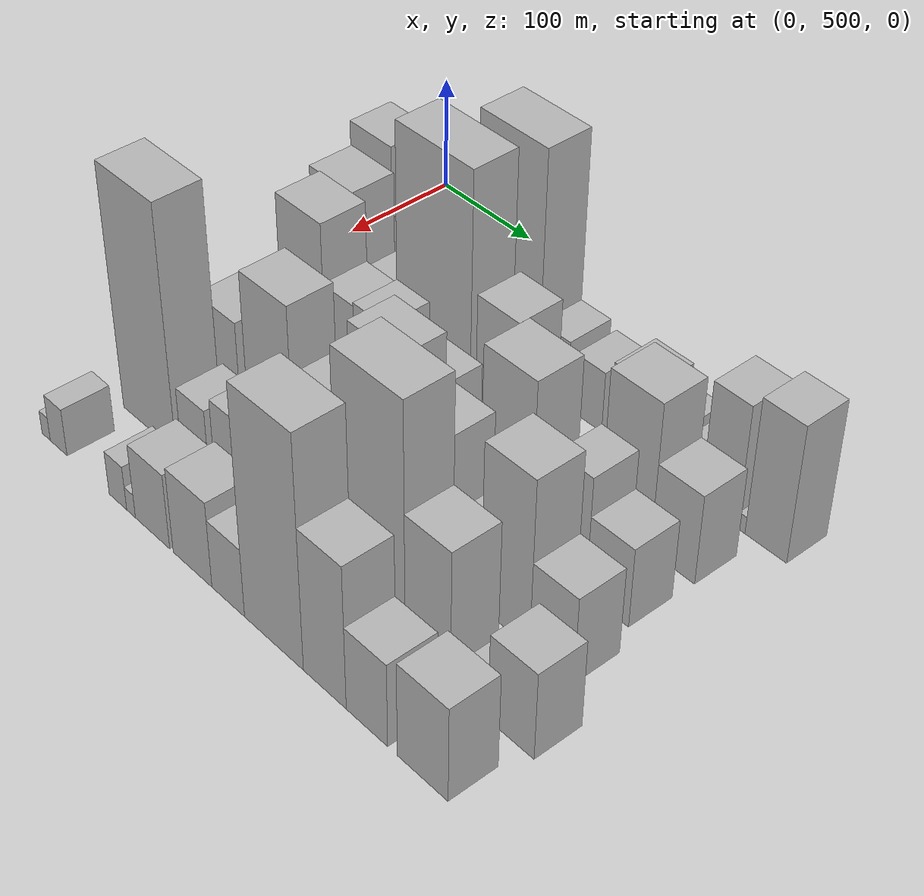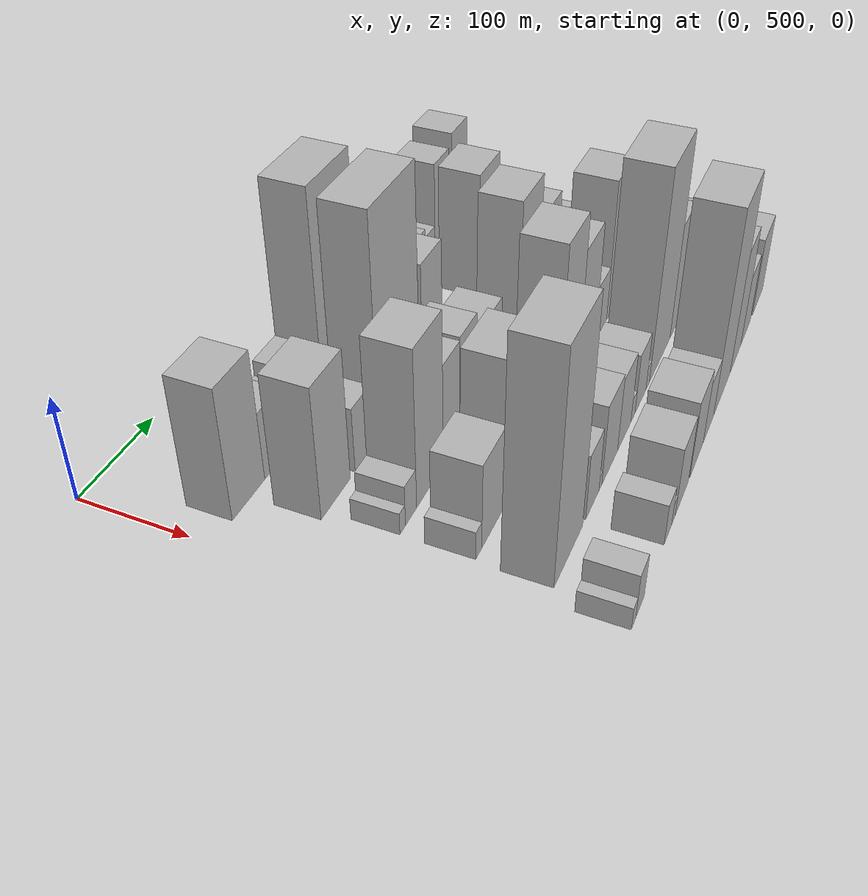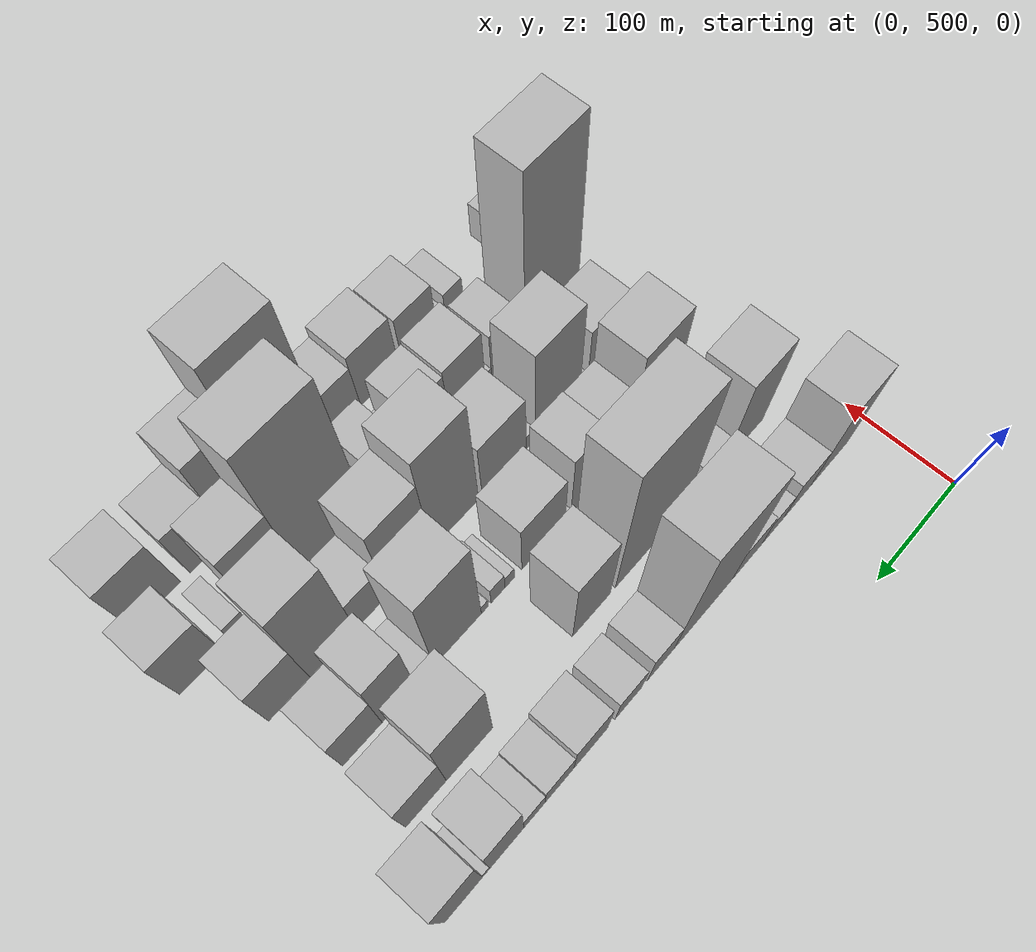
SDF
<sdf version="1.6">
 <world name="default">
  <model name="building_48">
   <static>1</static>
   <pose>100.0000 549.8775 0 0.000000 0.000000 0.000000</pose>
   <link name="link">
    <pose>0 0 63.00 0 0 0</pose>
    <collision name="collision"><geometry><box><size>40.0000 47.3200 126.0000</size></box></geometry></collision>
    <visual name="visual">
     <cast_shadows>0</cast_shadows>
     <geometry><box><size>40.0000 47.3200 126.0000</size></box></geometry>
     <material>
      <script>
       <uri>model://HANNAS_wall/materials/scripts</uri>
       <uri>model://HANNAS_wall/materials/textures</uri>
       <name>vrc/HANNAS_wall</name>
      </script>
     </material>
    </visual>
   </link>
  </model>
  <model name="building_49">
   <static>1</static>
   <pose>100.0000 590.4415 0 0.000000 0.000000 0.000000</pose>
   <link name="link">
    <pose>0 0 33.00 0 0 0</pose>
    <collision name="collision"><geometry><box><size>40.0000 33.8081 66.0000</size></box></geometry></collision>
    <visual name="visual">
     <cast_shadows>0</cast_shadows>
     <geometry><box><size>40.0000 33.8081 66.0000</size></box></geometry>
     <material>
      <script>
       <uri>model://HANNAS_wall/materials/scripts</uri>
       <uri>model://HANNAS_wall/materials/textures</uri>
       <name>vrc/HANNAS_wall</name>
      </script>
     </material>
    </visual>
   </link>
  </model>
  <model name="building_50">
   <static>1</static>
   <pose>100.0000 620.6591 0 0.000000 0.000000 0.000000</pose>
   <link name="link">
    <pose>0 0 22.50 0 0 0</pose>
    <collision name="collision"><geometry><box><size>40.0000 26.6270 45.0000</size></box></geometry></collision>
    <visual name="visual">
     <cast_shadows>0</cast_shadows>
     <geometry><box><size>40.0000 26.6270 45.0000</size></box></geometry>
     <material>
      <script>
       <uri>model://HANNAS_wall/materials/scripts</uri>
       <uri>model://HANNAS_wall/materials/textures</uri>
       <name>vrc/HANNAS_wall</name>
      </script>
     </material>
    </visual>
   </link>
  </model>
  <model name="building_51">
   <static>1</static>
   <pose>100.0000 651.8276 0 0.000000 0.000000 0.000000</pose>
   <link name="link">
    <pose>0 0 30.00 0 0 0</pose>
    <collision name="collision"><geometry><box><size>40.0000 35.7100 60.0000</size></box></geometry></collision>
    <visual name="visual">
     <cast_shadows>0</cast_shadows>
     <geometry><box><size>40.0000 35.7100 60.0000</size></box></geometry>
     <material>
      <script>
       <uri>model://HANNAS_wall/materials/scripts</uri>
       <uri>model://HANNAS_wall/materials/textures</uri>
       <name>vrc/HANNAS_wall</name>
      </script>
     </material>
    </visual>
   </link>
  </model>
  <model name="building_52">
   <static>1</static>
   <pose>100.0000 703.3484 0 0.000000 0.000000 0.000000</pose>
   <link name="link">
    <pose>0 0 103.50 0 0 0</pose>
    <collision name="collision"><geometry><box><size>40.0000 67.3316 207.0000</size></box></geometry></collision>
    <visual name="visual">
     <cast_shadows>0</cast_shadows>
     <geometry><box><size>40.0000 67.3316 207.0000</size></box></geometry>
     <material>
      <script>
       <uri>model://HANNAS_wall/materials/scripts</uri>
       <uri>model://HANNAS_wall/materials/textures</uri>
       <name>vrc/HANNAS_wall</name>
      </script>
     </material>
    </visual>
   </link>
  </model>
  <model name="building_53">
   <static>1</static>
   <pose>100.0000 752.0779 0 0.000000 0.000000 0.000000</pose>
   <link name="link">
    <pose>0 0 30.00 0 0 0</pose>
    <collision name="collision"><geometry><box><size>40.0000 30.1275 60.0000</size></box></geometry></collision>
    <visual name="visual">
     <cast_shadows>0</cast_shadows>
     <geometry><box><size>40.0000 30.1275 60.0000</size></box></geometry>
     <material>
      <script>
       <uri>model://HANNAS_wall/materials/scripts</uri>
       <uri>model://HANNAS_wall/materials/textures</uri>
       <name>vrc/HANNAS_wall</name>
      </script>
     </material>
    </visual>
   </link>
  </model>
  <model name="building_54">
   <static>1</static>
   <pose>100.0000 787.8107 0 0.000000 0.000000 0.000000</pose>
   <link name="link">
    <pose>0 0 27.00 0 0 0</pose>
    <collision name="collision"><geometry><box><size>40.0000 29.3382 54.0000</size></box></geometry></collision>
    <visual name="visual">
     <cast_shadows>0</cast_shadows>
     <geometry><box><size>40.0000 29.3382 54.0000</size></box></geometry>
     <material>
      <script>
       <uri>model://HANNAS_wall/materials/scripts</uri>
       <uri>model://HANNAS_wall/materials/textures</uri>
       <name>vrc/HANNAS_wall</name>
      </script>
     </material>
    </visual>
   </link>
  </model>
  <model name="building_55">
   <static>1</static>
   <pose>100.0000 828.6720 0 0.000000 0.000000 0.000000</pose>
   <link name="link">
    <pose>0 0 34.50 0 0 0</pose>
    <collision name="collision"><geometry><box><size>40.0000 36.3844 69.0000</size></box></geometry></collision>
    <visual name="visual">
     <cast_shadows>0</cast_shadows>
     <geometry><box><size>40.0000 36.3844 69.0000</size></box></geometry>
     <material>
      <script>
       <uri>model://HANNAS_wall/materials/scripts</uri>
       <uri>model://HANNAS_wall/materials/textures</uri>
       <name>vrc/HANNAS_wall</name>
      </script>
     </material>
    </visual>
   </link>
  </model>
  <model name="building_56">
   <static>1</static>
   <pose>100.0000 861.6268 0 0.000000 0.000000 0.000000</pose>
   <link name="link">
    <pose>0 0 25.50 0 0 0</pose>
    <collision name="collision"><geometry><box><size>40.0000 29.5252 51.0000</size></box></geometry></collision>
    <visual name="visual">
     <cast_shadows>0</cast_shadows>
     <geometry><box><size>40.0000 29.5252 51.0000</size></box></geometry>
     <material>
      <script>
       <uri>model://HANNAS_wall/materials/scripts</uri>
       <uri>model://HANNAS_wall/materials/textures</uri>
       <name>vrc/HANNAS_wall</name>
      </script>
     </material>
    </visual>
   </link>
  </model>
  <model name="building_57">
   <static>1</static>
   <pose>100.0000 887.3381 0 0.000000 0.000000 0.000000</pose>
   <link name="link">
    <pose>0 0 21.00 0 0 0</pose>
    <collision name="collision"><geometry><box><size>40.0000 21.8974 42.0000</size></box></geometry></collision>
    <visual name="visual">
     <cast_shadows>0</cast_shadows>
     <geometry><box><size>40.0000 21.8974 42.0000</size></box></geometry>
     <material>
      <script>
       <uri>model://HANNAS_wall/materials/scripts</uri>
       <uri>model://HANNAS_wall/materials/textures</uri>
       <name>vrc/HANNAS_wall</name>
      </script>
     </material>
    </visual>
   </link>
  </model>
  <model name="building_58">
   <static>1</static>
   <pose>100.0000 915.2594 0 0.000000 0.000000 0.000000</pose>
   <link name="link">
    <pose>0 0 54.00 0 0 0</pose>
    <collision name="collision"><geometry><box><size>40.0000 33.9451 108.0000</size></box></geometry></collision>
    <visual name="visual">
     <cast_shadows>0</cast_shadows>
     <geometry><box><size>40.0000 33.9451 108.0000</size></box></geometry>
     <material>
      <script>
       <uri>model://HANNAS_wall/materials/scripts</uri>
       <uri>model://HANNAS_wall/materials/textures</uri>
       <name>vrc/HANNAS_wall</name>
      </script>
     </material>
    </visual>
   </link>
  </model>
  <model name="building_59">
   <static>1</static>
   <pose>100.0000 935.6500 0 0.000000 0.000000 0.000000</pose>
   <link name="link">
    <pose>0 0 7.50 0 0 0</pose>
    <collision name="collision"><geometry><box><size>40.0000 6.8362 15.0000</size></box></geometry></collision>
    <visual name="visual">
     <cast_shadows>0</cast_shadows>
     <geometry><box><size>40.0000 6.8362 15.0000</size></box></geometry>
     <material>
      <script>
       <uri>model://HANNAS_wall/materials/scripts</uri>
       <uri>model://HANNAS_wall/materials/textures</uri>
       <name>vrc/HANNAS_wall</name>
      </script>
     </material>
    </visual>
   </link>
  </model>
  <model name="building_60">
   <static>1</static>
   <pose>100.0000 957.6113 0 0.000000 0.000000 0.000000</pose>
   <link name="link">
    <pose>0 0 60.00 0 0 0</pose>
    <collision name="collision"><geometry><box><size>40.0000 37.0865 120.0000</size></box></geometry></collision>
    <visual name="visual">
     <cast_shadows>0</cast_shadows>
     <geometry><box><size>40.0000 37.0865 120.0000</size></box></geometry>
     <material>
      <script>
       <uri>model://HANNAS_wall/materials/scripts</uri>
       <uri>model://HANNAS_wall/materials/textures</uri>
       <name>vrc/HANNAS_wall</name>
      </script>
     </material>
    </visual>
   </link>
  </model>
  <model name="building_103">
   <static>1</static>
   <pose>160.0000 576.4501 0 0.000000 0.000000 0.000000</pose>
   <link name="link">
    <pose>0 0 63.00 0 0 0</pose>
    <collision name="collision"><geometry><box><size>40.0000 47.5427 126.0000</size></box></geometry></collision>
    <visual name="visual">
     <cast_shadows>0</cast_shadows>
     <geometry><box><size>40.0000 47.5427 126.0000</size></box></geometry>
     <material>
      <script>
       <uri>model://HANNAS_wall/materials/scripts</uri>
       <uri>model://HANNAS_wall/materials/textures</uri>
       <name>vrc/HANNAS_wall</name>
      </script>
     </material>
    </visual>
   </link>
  </model>
  <model name="building_104">
   <static>1</static>
   <pose>160.0000 624.0365 0 0.000000 0.000000 0.000000</pose>
   <link name="link">
    <pose>0 0 31.50 0 0 0</pose>
    <collision name="collision"><geometry><box><size>40.0000 31.6301 63.0000</size></box></geometry></collision>
    <visual name="visual">
     <cast_shadows>0</cast_shadows>
     <geometry><box><size>40.0000 31.6301 63.0000</size></box></geometry>
     <material>
      <script>
       <uri>model://HANNAS_wall/materials/scripts</uri>
       <uri>model://HANNAS_wall/materials/textures</uri>
       <name>vrc/HANNAS_wall</name>
      </script>
     </material>
    </visual>
   </link>
  </model>
  <model name="building_105">
   <static>1</static>
   <pose>160.0000 689.5733 0 0.000000 0.000000 0.000000</pose>
   <link name="link">
    <pose>0 0 106.50 0 0 0</pose>
    <collision name="collision"><geometry><box><size>40.0000 79.4435 213.0000</size></box></geometry></collision>
    <visual name="visual">
     <cast_shadows>0</cast_shadows>
     <geometry><box><size>40.0000 79.4435 213.0000</size></box></geometry>
     <material>
      <script>
       <uri>model://HANNAS_wall/materials/scripts</uri>
       <uri>model://HANNAS_wall/materials/textures</uri>
       <name>vrc/HANNAS_wall</name>
      </script>
     </material>
    </visual>
   </link>
  </model>
  <model name="building_106">
   <static>1</static>
   <pose>160.0000 756.1594 0 0.000000 0.000000 0.000000</pose>
   <link name="link">
    <pose>0 0 57.00 0 0 0</pose>
    <collision name="collision"><geometry><box><size>40.0000 41.7285 114.0000</size></box></geometry></collision>
    <visual name="visual">
     <cast_shadows>0</cast_shadows>
     <geometry><box><size>40.0000 41.7285 114.0000</size></box></geometry>
     <material>
      <script>
       <uri>model://HANNAS_wall/materials/scripts</uri>
       <uri>model://HANNAS_wall/materials/textures</uri>
       <name>vrc/HANNAS_wall</name>
      </script>
     </material>
    </visual>
   </link>
  </model>
  <model name="building_107">
   <static>1</static>
   <pose>160.0000 885.7442 0 0.000000 0.000000 0.000000</pose>
   <link name="link">
    <pose>0 0 64.50 0 0 0</pose>
    <collision name="collision"><geometry><box><size>40.0000 47.1471 129.0000</size></box></geometry></collision>
    <visual name="visual">
     <cast_shadows>0</cast_shadows>
     <geometry><box><size>40.0000 47.1471 129.0000</size></box></geometry>
     <material>
      <script>
       <uri>model://HANNAS_wall/materials/scripts</uri>
       <uri>model://HANNAS_wall/materials/textures</uri>
       <name>vrc/HANNAS_wall</name>
      </script>
     </material>
    </visual>
   </link>
  </model>
  <model name="building_108">
   <static>1</static>
   <pose>160.0000 929.4658 0 0.000000 0.000000 0.000000</pose>
   <link name="link">
    <pose>0 0 39.00 0 0 0</pose>
    <collision name="collision"><geometry><box><size>40.0000 40.2960 78.0000</size></box></geometry></collision>
    <visual name="visual">
     <cast_shadows>0</cast_shadows>
     <geometry><box><size>40.0000 40.2960 78.0000</size></box></geometry>
     <material>
      <script>
       <uri>model://HANNAS_wall/materials/scripts</uri>
       <uri>model://HANNAS_wall/materials/textures</uri>
       <name>vrc/HANNAS_wall</name>
      </script>
     </material>
    </visual>
   </link>
  </model>
  <model name="building_155">
   <static>1</static>
   <pose>220.0000 566.6531 0 0.000000 0.000000 0.000000</pose>
   <link name="link">
    <pose>0 0 10.50 0 0 0</pose>
    <collision name="collision"><geometry><box><size>40.0000 9.6229 21.0000</size></box></geometry></collision>
    <visual name="visual">
     <cast_shadows>0</cast_shadows>
     <geometry><box><size>40.0000 9.6229 21.0000</size></box></geometry>
     <material>
      <script>
       <uri>model://HANNAS_wall/materials/scripts</uri>
       <uri>model://HANNAS_wall/materials/textures</uri>
       <name>vrc/HANNAS_wall</name>
      </script>
     </material>
    </visual>
   </link>
  </model>
  <model name="building_156">
   <static>1</static>
   <pose>220.0000 581.3983 0 0.000000 0.000000 0.000000</pose>
   <link name="link">
    <pose>0 0 19.50 0 0 0</pose>
    <collision name="collision"><geometry><box><size>40.0000 19.8675 39.0000</size></box></geometry></collision>
    <visual name="visual">
     <cast_shadows>0</cast_shadows>
     <geometry><box><size>40.0000 19.8675 39.0000</size></box></geometry>
     <material>
      <script>
       <uri>model://HANNAS_wall/materials/scripts</uri>
       <uri>model://HANNAS_wall/materials/textures</uri>
       <name>vrc/HANNAS_wall</name>
      </script>
     </material>
    </visual>
   </link>
  </model>
  <model name="building_157">
   <static>1</static>
   <pose>220.0000 616.2438 0 0.000000 0.000000 0.000000</pose>
   <link name="link">
    <pose>0 0 75.00 0 0 0</pose>
    <collision name="collision"><geometry><box><size>40.0000 49.8236 150.0000</size></box></geometry></collision>
    <visual name="visual">
     <cast_shadows>0</cast_shadows>
     <geometry><box><size>40.0000 49.8236 150.0000</size></box></geometry>
     <material>
      <script>
       <uri>model://HANNAS_wall/materials/scripts</uri>
       <uri>model://HANNAS_wall/materials/textures</uri>
       <name>vrc/HANNAS_wall</name>
      </script>
     </material>
    </visual>
   </link>
  </model>
  <model name="building_158">
   <static>1</static>
   <pose>220.0000 657.7411 0 0.000000 0.000000 0.000000</pose>
   <link name="link">
    <pose>0 0 49.50 0 0 0</pose>
    <collision name="collision"><geometry><box><size>40.0000 33.1709 99.0000</size></box></geometry></collision>
    <visual name="visual">
     <cast_shadows>0</cast_shadows>
     <geometry><box><size>40.0000 33.1709 99.0000</size></box></geometry>
     <material>
      <script>
       <uri>model://HANNAS_wall/materials/scripts</uri>
       <uri>model://HANNAS_wall/materials/textures</uri>
       <name>vrc/HANNAS_wall</name>
      </script>
     </material>
    </visual>
   </link>
  </model>
  <model name="building_159">
   <static>1</static>
   <pose>220.0000 691.3740 0 0.000000 0.000000 0.000000</pose>
   <link name="link">
    <pose>0 0 51.00 0 0 0</pose>
    <collision name="collision"><geometry><box><size>40.0000 34.0949 102.0000</size></box></geometry></collision>
    <visual name="visual">
     <cast_shadows>0</cast_shadows>
     <geometry><box><size>40.0000 34.0949 102.0000</size></box></geometry>
     <material>
      <script>
       <uri>model://HANNAS_wall/materials/scripts</uri>
       <uri>model://HANNAS_wall/materials/textures</uri>
       <name>vrc/HANNAS_wall</name>
      </script>
     </material>
    </visual>
   </link>
  </model>
  <model name="building_160">
   <static>1</static>
   <pose>220.0000 711.6849 0 0.000000 0.000000 0.000000</pose>
   <link name="link">
    <pose>0 0 7.50 0 0 0</pose>
    <collision name="collision"><geometry><box><size>40.0000 6.5268 15.0000</size></box></geometry></collision>
    <visual name="visual">
     <cast_shadows>0</cast_shadows>
     <geometry><box><size>40.0000 6.5268 15.0000</size></box></geometry>
     <material>
      <script>
       <uri>model://HANNAS_wall/materials/scripts</uri>
       <uri>model://HANNAS_wall/materials/textures</uri>
       <name>vrc/HANNAS_wall</name>
      </script>
     </material>
    </visual>
   </link>
  </model>
  <model name="building_161">
   <static>1</static>
   <pose>220.0000 739.0187 0 0.000000 0.000000 0.000000</pose>
   <link name="link">
    <pose>0 0 40.50 0 0 0</pose>
    <collision name="collision"><geometry><box><size>40.0000 48.1408 81.0000</size></box></geometry></collision>
    <visual name="visual">
     <cast_shadows>0</cast_shadows>
     <geometry><box><size>40.0000 48.1408 81.0000</size></box></geometry>
     <material>
      <script>
       <uri>model://HANNAS_wall/materials/scripts</uri>
       <uri>model://HANNAS_wall/materials/textures</uri>
       <name>vrc/HANNAS_wall</name>
      </script>
     </material>
    </visual>
   </link>
  </model>
  <model name="building_162">
   <static>1</static>
   <pose>220.0000 776.2524 0 0.000000 0.000000 0.000000</pose>
   <link name="link">
    <pose>0 0 10.50 0 0 0</pose>
    <collision name="collision"><geometry><box><size>40.0000 10.3265 21.0000</size></box></geometry></collision>
    <visual name="visual">
     <cast_shadows>0</cast_shadows>
     <geometry><box><size>40.0000 10.3265 21.0000</size></box></geometry>
     <material>
      <script>
       <uri>model://HANNAS_wall/materials/scripts</uri>
       <uri>model://HANNAS_wall/materials/textures</uri>
       <name>vrc/HANNAS_wall</name>
      </script>
     </material>
    </visual>
   </link>
  </model>
  <model name="building_163">
   <static>1</static>
   <pose>220.0000 788.9952 0 0.000000 0.000000 0.000000</pose>
   <link name="link">
    <pose>0 0 15.00 0 0 0</pose>
    <collision name="collision"><geometry><box><size>40.0000 15.1592 30.0000</size></box></geometry></collision>
    <visual name="visual">
     <cast_shadows>0</cast_shadows>
     <geometry><box><size>40.0000 15.1592 30.0000</size></box></geometry>
     <material>
      <script>
       <uri>model://HANNAS_wall/materials/scripts</uri>
       <uri>model://HANNAS_wall/materials/textures</uri>
       <name>vrc/HANNAS_wall</name>
      </script>
     </material>
    </visual>
   </link>
  </model>
  <model name="building_164">
   <static>1</static>
   <pose>220.0000 803.2473 0 0.000000 0.000000 0.000000</pose>
   <link name="link">
    <pose>0 0 7.50 0 0 0</pose>
    <collision name="collision"><geometry><box><size>40.0000 7.3450 15.0000</size></box></geometry></collision>
    <visual name="visual">
     <cast_shadows>0</cast_shadows>
     <geometry><box><size>40.0000 7.3450 15.0000</size></box></geometry>
     <material>
      <script>
       <uri>model://HANNAS_wall/materials/scripts</uri>
       <uri>model://HANNAS_wall/materials/textures</uri>
       <name>vrc/HANNAS_wall</name>
      </script>
     </material>
    </visual>
   </link>
  </model>
  <model name="building_165">
   <static>1</static>
   <pose>220.0000 831.9486 0 0.000000 0.000000 0.000000</pose>
   <link name="link">
    <pose>0 0 73.50 0 0 0</pose>
    <collision name="collision"><geometry><box><size>40.0000 50.0576 147.0000</size></box></geometry></collision>
    <visual name="visual">
     <cast_shadows>0</cast_shadows>
     <geometry><box><size>40.0000 50.0576 147.0000</size></box></geometry>
     <material>
      <script>
       <uri>model://HANNAS_wall/materials/scripts</uri>
       <uri>model://HANNAS_wall/materials/textures</uri>
       <name>vrc/HANNAS_wall</name>
      </script>
     </material>
    </visual>
   </link>
  </model>
  <model name="building_166">
   <static>1</static>
   <pose>220.0000 866.4399 0 0.000000 0.000000 0.000000</pose>
   <link name="link">
    <pose>0 0 16.50 0 0 0</pose>
    <collision name="collision"><geometry><box><size>40.0000 18.9250 33.0000</size></box></geometry></collision>
    <visual name="visual">
     <cast_shadows>0</cast_shadows>
     <geometry><box><size>40.0000 18.9250 33.0000</size></box></geometry>
     <material>
      <script>
       <uri>model://HANNAS_wall/materials/scripts</uri>
       <uri>model://HANNAS_wall/materials/textures</uri>
       <name>vrc/HANNAS_wall</name>
      </script>
     </material>
    </visual>
   </link>
  </model>
  <model name="building_167">
   <static>1</static>
   <pose>220.0000 892.7035 0 0.000000 0.000000 0.000000</pose>
   <link name="link">
    <pose>0 0 51.00 0 0 0</pose>
    <collision name="collision"><geometry><box><size>40.0000 33.6020 102.0000</size></box></geometry></collision>
    <visual name="visual">
     <cast_shadows>0</cast_shadows>
     <geometry><box><size>40.0000 33.6020 102.0000</size></box></geometry>
     <material>
      <script>
       <uri>model://HANNAS_wall/materials/scripts</uri>
       <uri>model://HANNAS_wall/materials/textures</uri>
       <name>vrc/HANNAS_wall</name>
      </script>
     </material>
    </visual>
   </link>
  </model>
  <model name="building_168">
   <static>1</static>
   <pose>220.0000 928.9885 0 0.000000 0.000000 0.000000</pose>
   <link name="link">
    <pose>0 0 34.50 0 0 0</pose>
    <collision name="collision"><geometry><box><size>40.0000 38.9681 69.0000</size></box></geometry></collision>
    <visual name="visual">
     <cast_shadows>0</cast_shadows>
     <geometry><box><size>40.0000 38.9681 69.0000</size></box></geometry>
     <material>
      <script>
       <uri>model://HANNAS_wall/materials/scripts</uri>
       <uri>model://HANNAS_wall/materials/textures</uri>
       <name>vrc/HANNAS_wall</name>
      </script>
     </material>
    </visual>
   </link>
  </model>
  <model name="building_215">
   <static>1</static>
   <pose>280.0000 566.7728 0 0.000000 0.000000 0.000000</pose>
   <link name="link">
    <pose>0 0 13.50 0 0 0</pose>
    <collision name="collision"><geometry><box><size>40.0000 11.1369 27.0000</size></box></geometry></collision>
    <visual name="visual">
     <cast_shadows>0</cast_shadows>
     <geometry><box><size>40.0000 11.1369 27.0000</size></box></geometry>
     <material>
      <script>
       <uri>model://HANNAS_wall/materials/scripts</uri>
       <uri>model://HANNAS_wall/materials/textures</uri>
       <name>vrc/HANNAS_wall</name>
      </script>
     </material>
    </visual>
   </link>
  </model>
  <model name="building_216">
   <static>1</static>
   <pose>280.0000 595.0987 0 0.000000 0.000000 0.000000</pose>
   <link name="link">
    <pose>0 0 40.50 0 0 0</pose>
    <collision name="collision"><geometry><box><size>40.0000 45.5149 81.0000</size></box></geometry></collision>
    <visual name="visual">
     <cast_shadows>0</cast_shadows>
     <geometry><box><size>40.0000 45.5149 81.0000</size></box></geometry>
     <material>
      <script>
       <uri>model://HANNAS_wall/materials/scripts</uri>
       <uri>model://HANNAS_wall/materials/textures</uri>
       <name>vrc/HANNAS_wall</name>
      </script>
     </material>
    </visual>
   </link>
  </model>
  <model name="building_217">
   <static>1</static>
   <pose>280.0000 622.4124 0 0.000000 0.000000 0.000000</pose>
   <link name="link">
    <pose>0 0 10.50 0 0 0</pose>
    <collision name="collision"><geometry><box><size>40.0000 9.1126 21.0000</size></box></geometry></collision>
    <visual name="visual">
     <cast_shadows>0</cast_shadows>
     <geometry><box><size>40.0000 9.1126 21.0000</size></box></geometry>
     <material>
      <script>
       <uri>model://HANNAS_wall/materials/scripts</uri>
       <uri>model://HANNAS_wall/materials/textures</uri>
       <name>vrc/HANNAS_wall</name>
      </script>
     </material>
    </visual>
   </link>
  </model>
  <model name="building_218">
   <static>1</static>
   <pose>280.0000 653.0334 0 0.000000 0.000000 0.000000</pose>
   <link name="link">
    <pose>0 0 66.00 0 0 0</pose>
    <collision name="collision"><geometry><box><size>40.0000 52.1295 132.0000</size></box></geometry></collision>
    <visual name="visual">
     <cast_shadows>0</cast_shadows>
     <geometry><box><size>40.0000 52.1295 132.0000</size></box></geometry>
     <material>
      <script>
       <uri>model://HANNAS_wall/materials/scripts</uri>
       <uri>model://HANNAS_wall/materials/textures</uri>
       <name>vrc/HANNAS_wall</name>
      </script>
     </material>
    </visual>
   </link>
  </model>
  <model name="building_219">
   <static>1</static>
   <pose>280.0000 684.2850 0 0.000000 0.000000 0.000000</pose>
   <link name="link">
    <pose>0 0 10.50 0 0 0</pose>
    <collision name="collision"><geometry><box><size>40.0000 10.3736 21.0000</size></box></geometry></collision>
    <visual name="visual">
     <cast_shadows>0</cast_shadows>
     <geometry><box><size>40.0000 10.3736 21.0000</size></box></geometry>
     <material>
      <script>
       <uri>model://HANNAS_wall/materials/scripts</uri>
       <uri>model://HANNAS_wall/materials/textures</uri>
       <name>vrc/HANNAS_wall</name>
      </script>
     </material>
    </visual>
   </link>
  </model>
  <model name="building_220">
   <static>1</static>
   <pose>280.0000 714.3496 0 0.000000 0.000000 0.000000</pose>
   <link name="link">
    <pose>0 0 42.00 0 0 0</pose>
    <collision name="collision"><geometry><box><size>40.0000 49.7558 84.0000</size></box></geometry></collision>
    <visual name="visual">
     <cast_shadows>0</cast_shadows>
     <geometry><box><size>40.0000 49.7558 84.0000</size></box></geometry>
     <material>
      <script>
       <uri>model://HANNAS_wall/materials/scripts</uri>
       <uri>model://HANNAS_wall/materials/textures</uri>
       <name>vrc/HANNAS_wall</name>
      </script>
     </material>
    </visual>
   </link>
  </model>
  <model name="building_221">
   <static>1</static>
   <pose>280.0000 768.5080 0 0.000000 0.000000 0.000000</pose>
   <link name="link">
    <pose>0 0 79.50 0 0 0</pose>
    <collision name="collision"><geometry><box><size>40.0000 50.5610 159.0000</size></box></geometry></collision>
    <visual name="visual">
     <cast_shadows>0</cast_shadows>
     <geometry><box><size>40.0000 50.5610 159.0000</size></box></geometry>
     <material>
      <script>
       <uri>model://HANNAS_wall/materials/scripts</uri>
       <uri>model://HANNAS_wall/materials/textures</uri>
       <name>vrc/HANNAS_wall</name>
      </script>
     </material>
    </visual>
   </link>
  </model>
  <model name="building_222">
   <static>1</static>
   <pose>280.0000 817.1870 0 0.000000 0.000000 0.000000</pose>
   <link name="link">
    <pose>0 0 61.50 0 0 0</pose>
    <collision name="collision"><geometry><box><size>40.0000 46.7970 123.0000</size></box></geometry></collision>
    <visual name="visual">
     <cast_shadows>0</cast_shadows>
     <geometry><box><size>40.0000 46.7970 123.0000</size></box></geometry>
     <material>
      <script>
       <uri>model://HANNAS_wall/materials/scripts</uri>
       <uri>model://HANNAS_wall/materials/textures</uri>
       <name>vrc/HANNAS_wall</name>
      </script>
     </material>
    </visual>
   </link>
  </model>
  <model name="building_223">
   <static>1</static>
   <pose>280.0000 857.2573 0 0.000000 0.000000 0.000000</pose>
   <link name="link">
    <pose>0 0 28.50 0 0 0</pose>
    <collision name="collision"><geometry><box><size>40.0000 33.3435 57.0000</size></box></geometry></collision>
    <visual name="visual">
     <cast_shadows>0</cast_shadows>
     <geometry><box><size>40.0000 33.3435 57.0000</size></box></geometry>
     <material>
      <script>
       <uri>model://HANNAS_wall/materials/scripts</uri>
       <uri>model://HANNAS_wall/materials/textures</uri>
       <name>vrc/HANNAS_wall</name>
      </script>
     </material>
    </visual>
   </link>
  </model>
  <model name="building_224">
   <static>1</static>
   <pose>280.0000 896.9468 0 0.000000 0.000000 0.000000</pose>
   <link name="link">
    <pose>0 0 72.00 0 0 0</pose>
    <collision name="collision"><geometry><box><size>40.0000 46.0355 144.0000</size></box></geometry></collision>
    <visual name="visual">
     <cast_shadows>0</cast_shadows>
     <geometry><box><size>40.0000 46.0355 144.0000</size></box></geometry>
     <material>
      <script>
       <uri>model://HANNAS_wall/materials/scripts</uri>
       <uri>model://HANNAS_wall/materials/textures</uri>
       <name>vrc/HANNAS_wall</name>
      </script>
     </material>
    </visual>
   </link>
  </model>
  <model name="building_225">
   <static>1</static>
   <pose>280.0000 940.1301 0 0.000000 0.000000 0.000000</pose>
   <link name="link">
    <pose>0 0 37.50 0 0 0</pose>
    <collision name="collision"><geometry><box><size>40.0000 40.3311 75.0000</size></box></geometry></collision>
    <visual name="visual">
     <cast_shadows>0</cast_shadows>
     <geometry><box><size>40.0000 40.3311 75.0000</size></box></geometry>
     <material>
      <script>
       <uri>model://HANNAS_wall/materials/scripts</uri>
       <uri>model://HANNAS_wall/materials/textures</uri>
       <name>vrc/HANNAS_wall</name>
      </script>
     </material>
    </visual>
   </link>
  </model>
  <model name="building_274">
   <static>1</static>
   <pose>340.0000 590.0544 0 0.000000 0.000000 0.000000</pose>
   <link name="link">
    <pose>0 0 106.50 0 0 0</pose>
    <collision name="collision"><geometry><box><size>40.0000 64.0019 213.0000</size></box></geometry></collision>
    <visual name="visual">
     <cast_shadows>0</cast_shadows>
     <geometry><box><size>40.0000 64.0019 213.0000</size></box></geometry>
     <material>
      <script>
       <uri>model://HANNAS_wall/materials/scripts</uri>
       <uri>model://HANNAS_wall/materials/textures</uri>
       <name>vrc/HANNAS_wall</name>
      </script>
     </material>
    </visual>
   </link>
  </model>
  <model name="building_275">
   <static>1</static>
   <pose>340.0000 645.2381 0 0.000000 0.000000 0.000000</pose>
   <link name="link">
    <pose>0 0 31.50 0 0 0</pose>
    <collision name="collision"><geometry><box><size>40.0000 32.3656 63.0000</size></box></geometry></collision>
    <visual name="visual">
     <cast_shadows>0</cast_shadows>
     <geometry><box><size>40.0000 32.3656 63.0000</size></box></geometry>
     <material>
      <script>
       <uri>model://HANNAS_wall/materials/scripts</uri>
       <uri>model://HANNAS_wall/materials/textures</uri>
       <name>vrc/HANNAS_wall</name>
      </script>
     </material>
    </visual>
   </link>
  </model>
  <model name="building_276">
   <static>1</static>
   <pose>340.0000 665.0611 0 0.000000 0.000000 0.000000</pose>
   <link name="link">
    <pose>0 0 7.50 0 0 0</pose>
    <collision name="collision"><geometry><box><size>40.0000 7.2804 15.0000</size></box></geometry></collision>
    <visual name="visual">
     <cast_shadows>0</cast_shadows>
     <geometry><box><size>40.0000 7.2804 15.0000</size></box></geometry>
     <material>
      <script>
       <uri>model://HANNAS_wall/materials/scripts</uri>
       <uri>model://HANNAS_wall/materials/textures</uri>
       <name>vrc/HANNAS_wall</name>
      </script>
     </material>
    </visual>
   </link>
  </model>
  <model name="building_277">
   <static>1</static>
   <pose>340.0000 689.1961 0 0.000000 0.000000 0.000000</pose>
   <link name="link">
    <pose>0 0 39.00 0 0 0</pose>
    <collision name="collision"><geometry><box><size>40.0000 40.9895 78.0000</size></box></geometry></collision>
    <visual name="visual">
     <cast_shadows>0</cast_shadows>
     <geometry><box><size>40.0000 40.9895 78.0000</size></box></geometry>
     <material>
      <script>
       <uri>model://HANNAS_wall/materials/scripts</uri>
       <uri>model://HANNAS_wall/materials/textures</uri>
       <name>vrc/HANNAS_wall</name>
      </script>
     </material>
    </visual>
   </link>
  </model>
  <model name="building_278">
   <static>1</static>
   <pose>340.0000 728.3053 0 0.000000 0.000000 0.000000</pose>
   <link name="link">
    <pose>0 0 36.00 0 0 0</pose>
    <collision name="collision"><geometry><box><size>40.0000 37.2289 72.0000</size></box></geometry></collision>
    <visual name="visual">
     <cast_shadows>0</cast_shadows>
     <geometry><box><size>40.0000 37.2289 72.0000</size></box></geometry>
     <material>
      <script>
       <uri>model://HANNAS_wall/materials/scripts</uri>
       <uri>model://HANNAS_wall/materials/textures</uri>
       <name>vrc/HANNAS_wall</name>
      </script>
     </material>
    </visual>
   </link>
  </model>
  <model name="building_279">
   <static>1</static>
   <pose>340.0000 752.8237 0 0.000000 0.000000 0.000000</pose>
   <link name="link">
    <pose>0 0 12.00 0 0 0</pose>
    <collision name="collision"><geometry><box><size>40.0000 11.8078 24.0000</size></box></geometry></collision>
    <visual name="visual">
     <cast_shadows>0</cast_shadows>
     <geometry><box><size>40.0000 11.8078 24.0000</size></box></geometry>
     <material>
      <script>
       <uri>model://HANNAS_wall/materials/scripts</uri>
       <uri>model://HANNAS_wall/materials/textures</uri>
       <name>vrc/HANNAS_wall</name>
      </script>
     </material>
    </visual>
   </link>
  </model>
  <model name="building_280">
   <static>1</static>
   <pose>340.0000 775.0546 0 0.000000 0.000000 0.000000</pose>
   <link name="link">
    <pose>0 0 30.00 0 0 0</pose>
    <collision name="collision"><geometry><box><size>40.0000 32.6540 60.0000</size></box></geometry></collision>
    <visual name="visual">
     <cast_shadows>0</cast_shadows>
     <geometry><box><size>40.0000 32.6540 60.0000</size></box></geometry>
     <material>
      <script>
       <uri>model://HANNAS_wall/materials/scripts</uri>
       <uri>model://HANNAS_wall/materials/textures</uri>
       <name>vrc/HANNAS_wall</name>
      </script>
     </material>
    </visual>
   </link>
  </model>
  <model name="building_281">
   <static>1</static>
   <pose>340.0000 796.6902 0 0.000000 0.000000 0.000000</pose>
   <link name="link">
    <pose>0 0 12.00 0 0 0</pose>
    <collision name="collision"><geometry><box><size>40.0000 10.6171 24.0000</size></box></geometry></collision>
    <visual name="visual">
     <cast_shadows>0</cast_shadows>
     <geometry><box><size>40.0000 10.6171 24.0000</size></box></geometry>
     <material>
      <script>
       <uri>model://HANNAS_wall/materials/scripts</uri>
       <uri>model://HANNAS_wall/materials/textures</uri>
       <name>vrc/HANNAS_wall</name>
      </script>
     </material>
    </visual>
   </link>
  </model>
  <model name="building_282">
   <static>1</static>
   <pose>340.0000 835.4702 0 0.000000 0.000000 0.000000</pose>
   <link name="link">
    <pose>0 0 103.50 0 0 0</pose>
    <collision name="collision"><geometry><box><size>40.0000 66.9429 207.0000</size></box></geometry></collision>
    <visual name="visual">
     <cast_shadows>0</cast_shadows>
     <geometry><box><size>40.0000 66.9429 207.0000</size></box></geometry>
     <material>
      <script>
       <uri>model://HANNAS_wall/materials/scripts</uri>
       <uri>model://HANNAS_wall/materials/textures</uri>
       <name>vrc/HANNAS_wall</name>
      </script>
     </material>
    </visual>
   </link>
  </model>
  <model name="building_283">
   <static>1</static>
   <pose>340.0000 890.5283 0 0.000000 0.000000 0.000000</pose>
   <link name="link">
    <pose>0 0 58.50 0 0 0</pose>
    <collision name="collision"><geometry><box><size>40.0000 43.1733 117.0000</size></box></geometry></collision>
    <visual name="visual">
     <cast_shadows>0</cast_shadows>
     <geometry><box><size>40.0000 43.1733 117.0000</size></box></geometry>
     <material>
      <script>
       <uri>model://HANNAS_wall/materials/scripts</uri>
       <uri>model://HANNAS_wall/materials/textures</uri>
       <name>vrc/HANNAS_wall</name>
      </script>
     </material>
    </visual>
   </link>
  </model>
  <model name="building_284">
   <static>1</static>
   <pose>340.0000 928.9352 0 0.000000 0.000000 0.000000</pose>
   <link name="link">
    <pose>0 0 15.00 0 0 0</pose>
    <collision name="collision"><geometry><box><size>40.0000 17.6406 30.0000</size></box></geometry></collision>
    <visual name="visual">
     <cast_shadows>0</cast_shadows>
     <geometry><box><size>40.0000 17.6406 30.0000</size></box></geometry>
     <material>
      <script>
       <uri>model://HANNAS_wall/materials/scripts</uri>
       <uri>model://HANNAS_wall/materials/textures</uri>
       <name>vrc/HANNAS_wall</name>
      </script>
     </material>
    </visual>
   </link>
  </model>
  <model name="building_285">
   <static>1</static>
   <pose>340.0000 967.3768 0 0.000000 0.000000 0.000000</pose>
   <link name="link">
    <pose>0 0 37.50 0 0 0</pose>
    <collision name="collision"><geometry><box><size>40.0000 41.2426 75.0000</size></box></geometry></collision>
    <visual name="visual">
     <cast_shadows>0</cast_shadows>
     <geometry><box><size>40.0000 41.2426 75.0000</size></box></geometry>
     <material>
      <script>
       <uri>model://HANNAS_wall/materials/scripts</uri>
       <uri>model://HANNAS_wall/materials/textures</uri>
       <name>vrc/HANNAS_wall</name>
      </script>
     </material>
    </visual>
   </link>
  </model>
  <model name="building_324">
   <static>1</static>
   <pose>400.0000 549.0511 0 0.000000 0.000000 0.000000</pose>
   <link name="link">
    <pose>0 0 10.50 0 0 0</pose>
    <collision name="collision"><geometry><box><size>40.0000 10.4391 21.0000</size></box></geometry></collision>
    <visual name="visual">
     <cast_shadows>0</cast_shadows>
     <geometry><box><size>40.0000 10.4391 21.0000</size></box></geometry>
     <material>
      <script>
       <uri>model://HANNAS_wall/materials/scripts</uri>
       <uri>model://HANNAS_wall/materials/textures</uri>
       <name>vrc/HANNAS_wall</name>
      </script>
     </material>
    </visual>
   </link>
  </model>
  <model name="building_325">
   <static>1</static>
   <pose>400.0000 564.8624 0 0.000000 0.000000 0.000000</pose>
   <link name="link">
    <pose>0 0 21.00 0 0 0</pose>
    <collision name="collision"><geometry><box><size>40.0000 21.1835 42.0000</size></box></geometry></collision>
    <visual name="visual">
     <cast_shadows>0</cast_shadows>
     <geometry><box><size>40.0000 21.1835 42.0000</size></box></geometry>
     <material>
      <script>
       <uri>model://HANNAS_wall/materials/scripts</uri>
       <uri>model://HANNAS_wall/materials/textures</uri>
       <name>vrc/HANNAS_wall</name>
      </script>
     </material>
    </visual>
   </link>
  </model>
  <model name="building_326">
   <static>1</static>
   <pose>400.0000 637.7245 0 0.000000 0.000000 0.000000</pose>
   <link name="link">
    <pose>0 0 19.50 0 0 0</pose>
    <collision name="collision"><geometry><box><size>40.0000 20.8469 39.0000</size></box></geometry></collision>
    <visual name="visual">
     <cast_shadows>0</cast_shadows>
     <geometry><box><size>40.0000 20.8469 39.0000</size></box></geometry>
     <material>
      <script>
       <uri>model://HANNAS_wall/materials/scripts</uri>
       <uri>model://HANNAS_wall/materials/textures</uri>
       <name>vrc/HANNAS_wall</name>
      </script>
     </material>
    </visual>
   </link>
  </model>
  <model name="building_327">
   <static>1</static>
   <pose>400.0000 653.2930 0 0.000000 0.000000 0.000000</pose>
   <link name="link">
    <pose>0 0 10.50 0 0 0</pose>
    <collision name="collision"><geometry><box><size>40.0000 10.2900 21.0000</size></box></geometry></collision>
    <visual name="visual">
     <cast_shadows>0</cast_shadows>
     <geometry><box><size>40.0000 10.2900 21.0000</size></box></geometry>
     <material>
      <script>
       <uri>model://HANNAS_wall/materials/scripts</uri>
       <uri>model://HANNAS_wall/materials/textures</uri>
       <name>vrc/HANNAS_wall</name>
      </script>
     </material>
    </visual>
   </link>
  </model>
  <model name="building_328">
   <static>1</static>
   <pose>400.0000 678.2340 0 0.000000 0.000000 0.000000</pose>
   <link name="link">
    <pose>0 0 33.00 0 0 0</pose>
    <collision name="collision"><geometry><box><size>40.0000 39.5919 66.0000</size></box></geometry></collision>
    <visual name="visual">
     <cast_shadows>0</cast_shadows>
     <geometry><box><size>40.0000 39.5919 66.0000</size></box></geometry>
     <material>
      <script>
       <uri>model://HANNAS_wall/materials/scripts</uri>
       <uri>model://HANNAS_wall/materials/textures</uri>
       <name>vrc/HANNAS_wall</name>
      </script>
     </material>
    </visual>
   </link>
  </model>
  <model name="building_329">
   <static>1</static>
   <pose>400.0000 723.5880 0 0.000000 0.000000 0.000000</pose>
   <link name="link">
    <pose>0 0 37.50 0 0 0</pose>
    <collision name="collision"><geometry><box><size>40.0000 43.1159 75.0000</size></box></geometry></collision>
    <visual name="visual">
     <cast_shadows>0</cast_shadows>
     <geometry><box><size>40.0000 43.1159 75.0000</size></box></geometry>
     <material>
      <script>
       <uri>model://HANNAS_wall/materials/scripts</uri>
       <uri>model://HANNAS_wall/materials/textures</uri>
       <name>vrc/HANNAS_wall</name>
      </script>
     </material>
    </visual>
   </link>
  </model>
  <model name="building_330">
   <static>1</static>
   <pose>400.0000 762.7002 0 0.000000 0.000000 0.000000</pose>
   <link name="link">
    <pose>0 0 30.00 0 0 0</pose>
    <collision name="collision"><geometry><box><size>40.0000 35.1086 60.0000</size></box></geometry></collision>
    <visual name="visual">
     <cast_shadows>0</cast_shadows>
     <geometry><box><size>40.0000 35.1086 60.0000</size></box></geometry>
     <material>
      <script>
       <uri>model://HANNAS_wall/materials/scripts</uri>
       <uri>model://HANNAS_wall/materials/textures</uri>
       <name>vrc/HANNAS_wall</name>
      </script>
     </material>
    </visual>
   </link>
  </model>
  <model name="building_331">
   <static>1</static>
   <pose>400.0000 810.6664 0 0.000000 0.000000 0.000000</pose>
   <link name="link">
    <pose>0 0 99.00 0 0 0</pose>
    <collision name="collision"><geometry><box><size>40.0000 60.8238 198.0000</size></box></geometry></collision>
    <visual name="visual">
     <cast_shadows>0</cast_shadows>
     <geometry><box><size>40.0000 60.8238 198.0000</size></box></geometry>
     <material>
      <script>
       <uri>model://HANNAS_wall/materials/scripts</uri>
       <uri>model://HANNAS_wall/materials/textures</uri>
       <name>vrc/HANNAS_wall</name>
      </script>
     </material>
    </visual>
   </link>
  </model>
  <model name="building_332">
   <static>1</static>
   <pose>400.0000 862.2232 0 0.000000 0.000000 0.000000</pose>
   <link name="link">
    <pose>0 0 61.50 0 0 0</pose>
    <collision name="collision"><geometry><box><size>40.0000 42.2897 123.0000</size></box></geometry></collision>
    <visual name="visual">
     <cast_shadows>0</cast_shadows>
     <geometry><box><size>40.0000 42.2897 123.0000</size></box></geometry>
     <material>
      <script>
       <uri>model://HANNAS_wall/materials/scripts</uri>
       <uri>model://HANNAS_wall/materials/textures</uri>
       <name>vrc/HANNAS_wall</name>
      </script>
     </material>
    </visual>
   </link>
  </model>
  <model name="building_333">
   <static>1</static>
   <pose>400.0000 903.0692 0 0.000000 0.000000 0.000000</pose>
   <link name="link">
    <pose>0 0 36.00 0 0 0</pose>
    <collision name="collision"><geometry><box><size>40.0000 39.4023 72.0000</size></box></geometry></collision>
    <visual name="visual">
     <cast_shadows>0</cast_shadows>
     <geometry><box><size>40.0000 39.4023 72.0000</size></box></geometry>
     <material>
      <script>
       <uri>model://HANNAS_wall/materials/scripts</uri>
       <uri>model://HANNAS_wall/materials/textures</uri>
       <name>vrc/HANNAS_wall</name>
      </script>
     </material>
    </visual>
   </link>
  </model>
  <model name="building_334">
   <static>1</static>
   <pose>400.0000 954.8462 0 0.000000 0.000000 0.000000</pose>
   <link name="link">
    <pose>0 0 40.50 0 0 0</pose>
    <collision name="collision"><geometry><box><size>40.0000 46.1517 81.0000</size></box></geometry></collision>
    <visual name="visual">
     <cast_shadows>0</cast_shadows>
     <geometry><box><size>40.0000 46.1517 81.0000</size></box></geometry>
     <material>
      <script>
       <uri>model://HANNAS_wall/materials/scripts</uri>
       <uri>model://HANNAS_wall/materials/textures</uri>
       <name>vrc/HANNAS_wall</name>
      </script>
     </material>
    </visual>
   </link>
  </model>
 </world>
</sdf>
